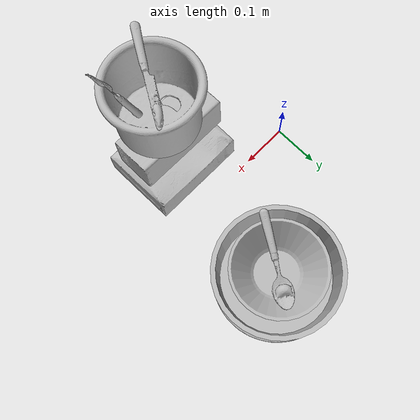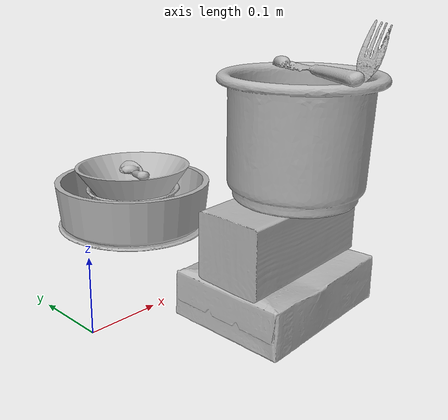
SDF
<?xml version="1.0" ?>
<sdf version="1.4">

  <world name="default">

    <light name="light1" type="point">

      <pose>0 0 1 0 0 0</pose>

      <diffuse>3 3 3 1</diffuse>

      <specular>3 3 3 1</specular>

    </light>

    <light name="light2" type="point">

      <pose>0 0.5 2 0 0 0</pose>

      <diffuse>1 1 1 1</diffuse>

      <specular>1 1 1 1</specular>

    </light>

    <light name="light3" type="point">

      <pose>0 0.5 2 0 0 0</pose>

      <diffuse>3 3 3 1</diffuse>

      <specular>3 3 3 1</specular>

    </light>

    <scene>

      <ambient>0.7 0.7 0.7</ambient>

    </scene>

    <model name="plate1">

      <link name="link_plate1">

        <collision name="default">

          <geometry>

            <mesh>

              <uri>model://plate/collision_meshes/collision.obj</uri>

              <scale>1.0 1.0 1.0</scale>

            </mesh>

          </geometry>

          <surface>

            <friction>

              <ode>

                <mu>0.5</mu>

                <mu2>0.5</mu2>

              </ode>

            </friction>

          </surface>

        </collision>

        <visual name="default">

          <geometry>

            <mesh>

              <uri>model://plate/visual_meshes/visual.dae</uri>

              <scale>1.0 1.0 1.0</scale>

            </mesh>

          </geometry>

        </visual>

        <inertial>

          <mass>0.18013060092926025</mass>

          <pose>-0.0006044624606147408 0.0002782579977065325 -0.0010561981471255422 0.0022187543261248163 -0.003225499970721242 0.452618951787785</pose>

          <inertia>

            <ixx>0.00084265455</ixx>

            <iyy>0.000834595</iyy>

            <izz>0.0016481068</izz>

            <ixy>0</ixy>

            <ixz>0</ixz>

            <iyz>0</iyz>

          </inertia>

        </inertial>

      </link>

      <pose>0.249969482421875 0.21999895572662354 0.01374113280326128 -3.564348902619704e-05 -0.00010459836660056757 -0.00019416490150967833</pose>

    </model>

    <model name="plate2">

      <link name="link_plate2">

        <collision name="default">

          <geometry>

            <mesh>

              <uri>model://pan_tefal/collision_meshes/collision.obj</uri>

              <scale>1.0 1.0 1.0</scale>

            </mesh>

          </geometry>

          <surface>

            <friction>

              <ode>

                <mu>0.5</mu>

                <mu2>0.5</mu2>

              </ode>

            </friction>

          </surface>

        </collision>

        <visual name="default">

          <geometry>

            <mesh>

              <uri>model://pan_tefal/visual_meshes/visual.dae</uri>

              <scale>1.0 1.0 1.0</scale>

            </mesh>

          </geometry>

        </visual>

        <inertial>

          <mass>1.1554980278015137</mass>

          <pose>-0.00018001958960667253 3.279018710600212e-05 -0.008514934219419956 0.0008190268412404128 -0.0003301434555644904 -0.33185316474518306</pose>

          <inertia>

            <ixx>0.007976347</ixx>

            <iyy>0.008027771</iyy>

            <izz>0.014682918</izz>

            <ixy>0</ixy>

            <ixz>0</ixz>

            <iyz>0</iyz>

          </inertia>

        </inertial>

      </link>

      <pose>0.2499959021806717 0.2202342450618744 0.06392239034175873 0.0015886923456794942 -0.0024595234351790923 0.0027036831487861567</pose>

    </model>

    <model name="bowl1">

      <link name="link_bowl1">

        <collision name="default">

          <geometry>

            <mesh>

              <uri>model://bowl/collision_meshes/collision.obj</uri>

              <scale>1.0 1.0 1.0</scale>

            </mesh>

          </geometry>

          <surface>

            <friction>

              <ode>

                <mu>0.5</mu>

                <mu2>0.5</mu2>

              </ode>

            </friction>

          </surface>

        </collision>

        <visual name="default">

          <geometry>

            <mesh>

              <uri>model://bowl/visual_meshes/visual.dae</uri>

              <scale>1.0 1.0 1.0</scale>

            </mesh>

          </geometry>

        </visual>

        <inertial>

          <mass>0.08154366910457611</mass>

          <pose>0.0002044497523456812 -0.0010302083101123571 -0.0008042664267122746 -0.01576409235239578 0.014546819263349199 0.7140418673414882</pose>

          <inertia>

            <ixx>0.00018731231</ixx>

            <iyy>0.000183127</iyy>

            <izz>0.00031512365</izz>

            <ixy>0</ixy>

            <ixz>0</ixz>

            <iyz>0</iyz>

          </inertia>

        </inertial>

      </link>

      <pose>0.24988040328025818 0.21883484721183777 0.06135209649801254 0.0009445547981188893 -0.00304156818254946 0.03317192759877597</pose>

    </model>

    <model name="bowl2">

      <link name="link_bowl2">

        <collision name="default">

          <geometry>

            <mesh>

              <uri>model://bowl_a/collision_meshes/collision.obj</uri>

              <scale>1.0 1.0 1.0</scale>

            </mesh>

          </geometry>

          <surface>

            <friction>

              <ode>

                <mu>0.5</mu>

                <mu2>0.5</mu2>

              </ode>

            </friction>

          </surface>

        </collision>

        <visual name="default">

          <geometry>

            <mesh>

              <uri>model://bowl_a/visual_meshes/visual.dae</uri>

              <scale>1.0 1.0 1.0</scale>

            </mesh>

          </geometry>

        </visual>

        <inertial>

          <mass>0.4363987147808075</mass>

          <pose>0.0002786752884276211 4.73113359475974e-05 -0.0013765294570475817 -0.0009805318297205425 -0.0010938254473046036 -0.19123908587825994</pose>

          <inertia>

            <ixx>0.0012424473</ixx>

            <iyy>0.001250075</iyy>

            <izz>0.0022097398</izz>

            <ixy>0</ixy>

            <ixz>0</ixz>

            <iyz>0</iyz>

          </inertia>

        </inertial>

      </link>

      <pose>0.2505609691143036 0.21940548717975616 0.09630820155143738 -0.017189110543981506 -0.01199935792915357 0.06286856332476475</pose>

    </model>

    <model name="silverware1">

      <link name="link_silverware1">

        <collision name="default">

          <geometry>

            <mesh>

              <uri>model://spoon/collision_meshes/collision.obj</uri>

              <scale>1.0 1.0 1.0</scale>

            </mesh>

          </geometry>

          <surface>

            <friction>

              <ode>

                <mu>0.5</mu>

                <mu2>0.5</mu2>

              </ode>

            </friction>

          </surface>

        </collision>

        <visual name="default">

          <geometry>

            <mesh>

              <uri>model://spoon/visual_meshes/visual.dae</uri>

              <scale>1.0 1.0 1.0</scale>

            </mesh>

          </geometry>

        </visual>

        <inertial>

          <mass>0.034700214862823486</mass>

          <pose>-0.00552632100880146 -0.0016034168656915426 -0.0007271654903888702 0.03521477925438783 -0.03906582568380071 0.006150611591128785</pose>

          <inertia>

            <ixx>1.9300821e-06</ixx>

            <iyy>0.00013203312</iyy>

            <izz>0.00013298499</izz>

            <ixy>0</ixy>

            <ixz>0</ixz>

            <iyz>0</iyz>

          </inertia>

        </inertial>

      </link>

      <pose>0.24029329419136047 0.20255446434020996 0.11985180526971817 -0.00443187654476924 0.21898907084486605 1.009974851324091</pose>

    </model>

    <model name="box1">

      <link name="link_box1">

        <collision name="default">

          <geometry>

            <mesh>

              <uri>model://cracker_box/collision_meshes/collision.obj</uri>

              <scale>1.0 1.0 1.0</scale>

            </mesh>

          </geometry>

          <surface>

            <friction>

              <ode>

                <mu>0.5</mu>

                <mu2>0.5</mu2>

              </ode>

            </friction>

          </surface>

        </collision>

        <visual name="default">

          <geometry>

            <mesh>

              <uri>model://cracker_box/visual_meshes/visual.dae</uri>

              <scale>1.0 1.0 1.0</scale>

            </mesh>

          </geometry>

        </visual>

        <inertial>

          <mass>1.831273078918457</mass>

          <pose>0.000946414191275835 0.00025434247800149024 -0.0017029533628374338 -0.0003162074786093215 -0.01110648680647863 0.0025467950006863548</pose>

          <inertia>

            <ixx>0.0046579414</ixx>

            <iyy>0.0076911766</iyy>

            <izz>0.010976015</izz>

            <ixy>0</ixy>

            <ixz>0</ixz>

            <iyz>0</iyz>

          </inertia>

        </inertial>

      </link>

      <pose>0.209750235080719 -0.11937331408262253 0.03648204356431961 -0.011794870290062313 -0.0073649149919502045 0.00046157143476073287</pose>

    </model>

    <model name="box2">

      <link name="link_box2">

        <collision name="default">

          <geometry>

            <mesh>

              <uri>model://wood_block/collision_meshes/collision.obj</uri>

              <scale>1.0 1.0 1.0</scale>

            </mesh>

          </geometry>

          <surface>

            <friction>

              <ode>

                <mu>0.5</mu>

                <mu2>0.5</mu2>

              </ode>

            </friction>

          </surface>

        </collision>

        <visual name="default">

          <geometry>

            <mesh>

              <uri>model://wood_block/visual_meshes/visual.dae</uri>

              <scale>1.0 1.0 1.0</scale>

            </mesh>

          </geometry>

        </visual>

        <inertial>

          <mass>1.0038666725158691</mass>

          <pose>-5.813315510749817e-06 -0.000570809468626976 0.0002640858292579651 -0.05221020962952386 -0.005192696059900718 -0.006861377701075274</pose>

          <inertia>

            <ixx>0.0013433257</ixx>

            <iyy>0.0042435657</iyy>

            <izz>0.0042276927</izz>

            <ixy>0</ixy>

            <ixz>0</ixz>

            <iyz>0</iyz>

          </inertia>

        </inertial>

      </link>

      <pose>0.1985800713300705 -0.13125109672546387 0.11746629327535629 -3.1220853406268723 -0.034486895134495855 0.0007735731926199632</pose>

    </model>

    <model name="cup1">

      <link name="link_cup1">

        <collision name="default">

          <geometry>

            <mesh>

              <uri>model://i_cups/collision_meshes/collision.obj</uri>

              <scale>2.0 2.0 2.0</scale>

            </mesh>

          </geometry>

          <surface>

            <friction>

              <ode>

                <mu>0.5</mu>

                <mu2>0.5</mu2>

              </ode>

            </friction>

          </surface>

        </collision>

        <visual name="default">

          <geometry>

            <mesh>

              <uri>model://i_cups/visual_meshes/visual.dae</uri>

              <scale>2.0 2.0 2.0</scale>

            </mesh>

          </geometry>

        </visual>

        <inertial>

          <mass>0.6038269996643066</mass>

          <pose>0.00022479970357380807 0.0003359453985467553 -0.001715799910016358 -0.02898255198870416 -0.03987340808103542 -0.3459203892901821</pose>

          <inertia>

            <ixx>0.0033440301</ixx>

            <iyy>0.003373493</iyy>

            <izz>0.0037374943</izz>

            <ixy>0</ixy>

            <ixz>0</ixz>

            <iyz>0</iyz>

          </inertia>

        </inertial>

      </link>

      <pose>0.20640511810779572 -0.14313845336437225 0.23812909424304962 0.026862174196660885 -0.03244087143432836 0.0013380189012641424</pose>

    </model>

    <model name="silverware2">

      <link name="link_silverware2">

        <collision name="default">

          <geometry>

            <mesh>

              <uri>model://knife/collision_meshes/collision.obj</uri>

              <scale>1.0 1.0 1.0</scale>

            </mesh>

          </geometry>

          <surface>

            <friction>

              <ode>

                <mu>0.5</mu>

                <mu2>0.5</mu2>

              </ode>

            </friction>

          </surface>

        </collision>

        <visual name="default">

          <geometry>

            <mesh>

              <uri>model://knife/visual_meshes/visual.dae</uri>

              <scale>1.0 1.0 1.0</scale>

            </mesh>

          </geometry>

        </visual>

        <inertial>

          <mass>0.01351180113852024</mass>

          <pose>-0.023785246536135674 0.0015275131445378065 5.062015407020226e-05 0.073058244240525 0.017248418380522417 -0.007409818685807072</pose>

          <inertia>

            <ixx>3.8351965e-07</ixx>

            <iyy>5.1910156e-05</iyy>

            <izz>5.2033673e-05</izz>

            <ixy>0</ixy>

            <ixz>0</ixz>

            <iyz>0</iyz>

          </inertia>

        </inertial>

      </link>

      <pose>0.1968846172094345 -0.15886977314949036 0.31833070516586304 2.9181773184747892 -0.0010748806729047541 1.0300522926403604</pose>

    </model>

    <model name="silverware3">

      <link name="link_silverware3">

        <collision name="default">

          <geometry>

            <mesh>

              <uri>model://fork/collision_meshes/collision.obj</uri>

              <scale>1.0 1.0 1.0</scale>

            </mesh>

          </geometry>

          <surface>

            <friction>

              <ode>

                <mu>0.5</mu>

                <mu2>0.5</mu2>

              </ode>

            </friction>

          </surface>

        </collision>

        <visual name="default">

          <geometry>

            <mesh>

              <uri>model://fork/visual_meshes/visual.dae</uri>

              <scale>1.0 1.0 1.0</scale>

            </mesh>

          </geometry>

        </visual>

        <inertial>

          <mass>0.030749449506402016</mass>

          <pose>-0.029570044949650764 0.0004658822435885668 0.00032188615296036005 -0.013551266353778695 -0.010977839115777554 0.014453902178384312</pose>

          <inertia>

            <ixx>1.0779423e-06</ixx>

            <iyy>8.0277954e-05</iyy>

            <izz>8.076011e-05</izz>

            <ixy>0</ixy>

            <ixz>0</ixz>

            <iyz>0</iyz>

          </inertia>

        </inertial>

      </link>

      <pose>0.2516879737377167 -0.18750737607479095 0.2745444178581238 -2.3341128899847052 -1.305272219655314 -0.5426385515412537</pose>

    </model>

  </world>

</sdf>
